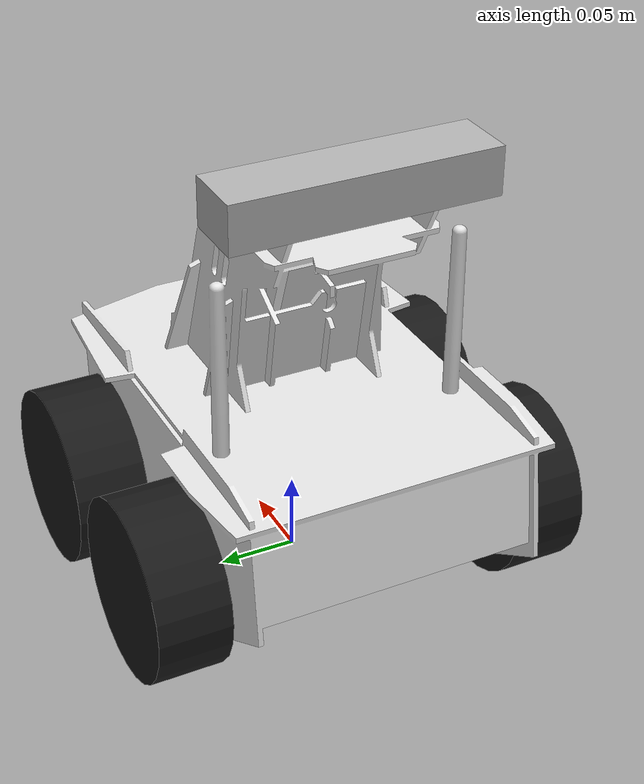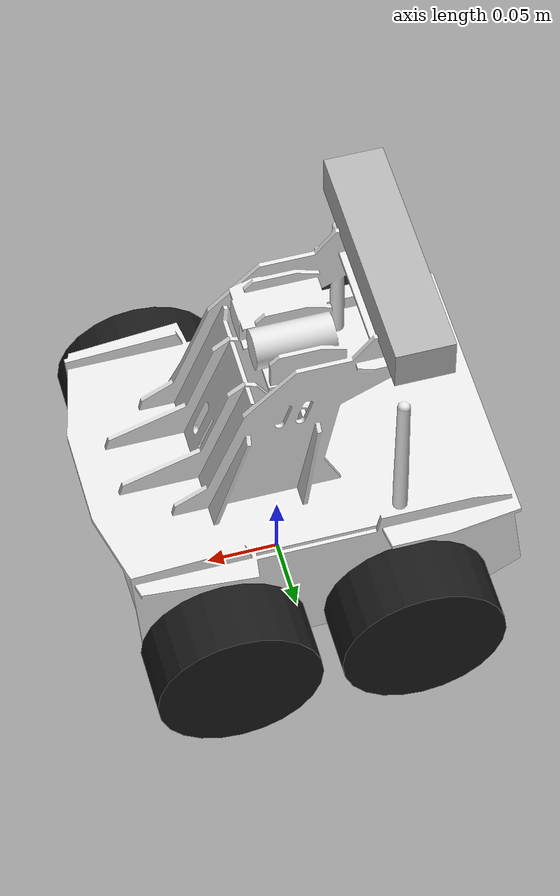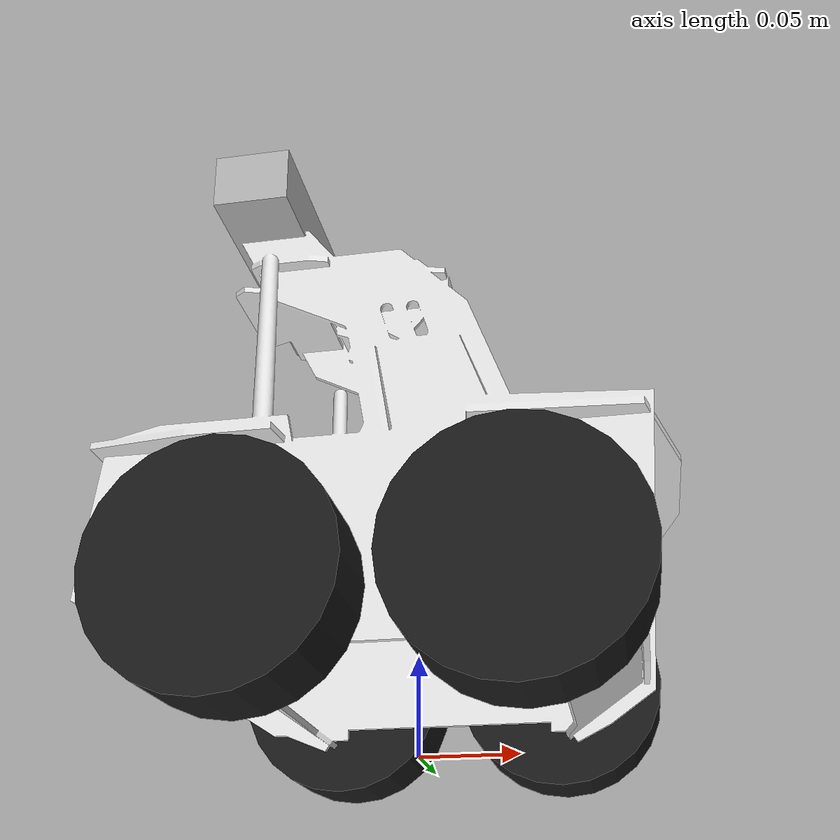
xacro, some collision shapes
<?xml version='1.0'?>

<robot name="oculusprime" xmlns:xacro="http://ros.org/wiki/xacro">
<xacro:property name="M_PI" value="3.1415926535897931" />

	<link name="base_link">
		<inertial>
			<origin xyz="0 0 0.06" rpy="0 0 0" />
			<mass value="4.0"/>
			<inertia ixx="0.0227"
				iyy="0.0359"
				izz="0.0371"
				ixy="0"
				ixz="0"
				iyz="0"	/>
		</inertial>

		<collision>
			<origin xyz="-0.0064 0 0.1517" rpy="0 0 0" />
			<geometry>
				<box size=".2818 .19 .2595"/>
			</geometry>
		</collision>

		<visual>
			<origin xyz="0.0127 0 .0808" rpy="0 0 ${M_PI/2}" />
			<geometry>
				<mesh filename="package://oculusprime/description/meshes/chassis.dae" />
			</geometry>
		</visual>

	</link>

	<material name="black">
		<color rgba="0.1 0.1 0.1 1.0"/>
	</material>

	<!-- wheels -->
	<joint type="continuous" name="front_right_wheel_joint">
		<origin xyz="0.0635 -0.1186 0.057" rpy="0 ${M_PI/2} ${M_PI/2}"/>
		<parent link="base_link"/>
		<child link="front_right_wheel_link"/>
		<axis xyz="0 0 1"/>
	</joint>

	<link name="front_right_wheel_link">
		<collision>
			<origin xyz="0 0 0" rpy="0 0 0"/>
			<geometry>
				<cylinder radius="0.057" length="0.046" />
			</geometry>
		</collision>

		<visual>
			<origin xyz="0 0 0" rpy="0 0 0"/>
			<geometry>
				<cylinder radius="0.057" length="0.046" />
			</geometry>
			<material name="black"/>
		</visual>

		<inertial>
			<mass value="0.05" />
			<origin xyz="0 0 0" />
			<inertia ixx="0.001" ixy="0.0" ixz="0.0"
			iyy="0.001" iyz="0.0"
			izz="0.001" />
		</inertial>
	</link>

	<joint type="continuous" name="front_left_wheel_joint">
		<origin xyz="0.0635 0.1186 0.057" rpy="0 ${M_PI/2} ${M_PI/2}"/>
		<child link="front_left_wheel_link"/>
		<parent link="base_link"/>
		<axis xyz="0 0 1"/>
	</joint>

	<link name="front_left_wheel_link">
		<collision>
			<origin xyz="0 0 0" rpy="0 0 0"/>
			<geometry>
				<cylinder radius="0.057" length="0.046" />
			</geometry>
		</collision>

		<visual>
			<origin xyz="0 0 0" rpy="0 0 0"/>
			<geometry>
				<cylinder radius="0.057" length="0.046" />
			</geometry>
			<material name="black"/>
		</visual>

		<inertial>
			<mass value="0.05" />
			<origin xyz="0 0 0" />
			<inertia ixx="0.001" ixy="0.0" ixz="0.0"
			iyy="0.001" iyz="0.0"
			izz="0.001" />
		</inertial>
	</link>

	<joint type="continuous" name="rear_right_wheel_joint">
		<origin xyz="-0.0635 -0.1186 0.057" rpy="0 ${M_PI/2} ${M_PI/2}"/>
		<child link="rear_right_wheel_link"/>
		<parent link="base_link"/>
		<axis xyz="0 0 1"/>
	</joint>

	<link name="rear_right_wheel_link">
		<collision>
			<origin xyz="0 0 0" rpy="0 0 0"/>
			<geometry>
				<cylinder radius="0.057" length="0.046" />
			</geometry>
		</collision>

		<visual>
			<origin xyz="0 0 0" rpy="0 0 0"/>
			<geometry>
				<cylinder radius="0.057" length="0.046" />
			</geometry>
			<material name="black"/>
		</visual>

		<inertial>
			<mass value="0.05" />
			<origin xyz="0 0 0" />
			<inertia ixx="0.001" ixy="0.0" ixz="0.0"
			iyy="0.001" iyz="0.0"
			izz="0.001" />
		</inertial>
	</link>

	<joint type="continuous" name="rear_left_wheel_joint">
		<origin xyz="-0.0635 0.1186 0.057" rpy="0 ${M_PI/2} ${M_PI/2}"/>
		<child link="rear_left_wheel_link"/>
		<parent link="base_link"/>
		<axis xyz="0 0 1"/>
	</joint>

	<link name="rear_left_wheel_link">
		<collision>
			<origin xyz="0 0 0" rpy="0 0 0"/>
			<geometry>
				<cylinder radius="0.057" length="0.046" />
			</geometry>
		</collision>

		<visual>
			<origin xyz="0 0 0" rpy="0 0 0"/>
			<geometry>
				<cylinder radius="0.057" length="0.046" />
			</geometry>
			<material name="black"/>
		</visual>

		<inertial>
			<mass value="0.05" />
			<origin xyz="0 0 0" />
			<inertia ixx="0.001" ixy="0.0" ixz="0.0"
			iyy="0.001" iyz="0.0"
			izz="0.001" />
		</inertial>
	</link>

	<!-- astra -->
	<xacro:include filename="$(find oculusprime)/description/astra.urdf.xacro"/>
	<sensor_astra parent="base_link"/>

	<!-- gazebo specific stuff -->
	<gazebo reference="front_right_wheel_link">
		<mu1>1.0</mu1>
		<mu2>1.0</mu2>
		<kp>1000000.0</kp>
		<kd>100.0</kd>
		<minDepth>0.001</minDepth>
		<maxVel>1.0</maxVel>
		<material>Gazebo/DarkGrey</material>
	</gazebo>

	<gazebo reference="front_left_wheel_link">
		<mu1>1.0</mu1>
		<mu2>1.0</mu2>
		<kp>1000000.0</kp>
		<kd>100.0</kd>
		<minDepth>0.001</minDepth>
		<maxVel>1.0</maxVel>
		<material>Gazebo/DarkGrey</material>
	</gazebo>

	<gazebo reference="rear_right_wheel_link">
		<mu1>1.0</mu1>
		<mu2>1.0</mu2>
		<kp>1000000.0</kp>
		<kd>100.0</kd>
		<minDepth>0.001</minDepth>
		<maxVel>1.0</maxVel>
		<material>Gazebo/DarkGrey</material>
	</gazebo>

	<gazebo reference="rear_left_wheel_link">
		<mu1>1.0</mu1>
		<mu2>1.0</mu2>
		<kp>1000000.0</kp>
		<kd>100.0</kd>
		<minDepth>0.001</minDepth>
		<maxVel>1.0</maxVel>
		<material>Gazebo/DarkGrey</material>
	</gazebo>

	<joint name="gyro_joint" type="fixed">
      <axis xyz="0 1 0"/>
      <origin xyz="0 0 0" rpy="0 0 0"/>
      <parent link="base_link"/>
      <child link="gyro_link"/>
    </joint>
    <link name="gyro_link">
      <inertial>
        <mass value="0.001"/>
        <origin xyz="0 0 0" rpy="0 0 0"/>
        <inertia ixx="0.0001" ixy="0" ixz="0"
                 iyy="0.000001" iyz="0"
                 izz="0.0001"/>
      </inertial>
    </link>

	<gazebo reference="gyro_link">
	   <sensor type="imu" name="imu">
        <always_on>true</always_on>
        <update_rate>50</update_rate>
        <visualize>false</visualize>
        <imu>
          <noise>
            <type>gaussian</type>
	          <rate>
	            <mean>0.0</mean>
	            <!-- 0.25 x 0.25 (deg/s): -->

	             <stddev>${0.0000*0.0000}</stddev>
	            <bias_mean>0.0</bias_mean>
	            <bias_stddev>0.0</bias_stddev>
	          </rate>
		        <accel> <!-- not used in the plugin and real robot, hence using tutorial values -->
			        <mean>0.0</mean>
					<stddev>0</stddev>
			        <bias_mean>0.1</bias_mean>
			        <bias_stddev>0.000</bias_stddev>

		        </accel>
          </noise>
	      </imu>
      </sensor>
	</gazebo>

	<gazebo>
		<plugin name="skidsteer_controller" filename="libgazebo_ros_skid_steer_drive.so">

			<commandTopic>cmd_vel</commandTopic>
			<broadcastTF>true</broadcastTF>
			<odometryTopic>odom</odometryTopic>
			<odometryFrame>odom</odometryFrame>

			<leftFrontJoint>front_left_wheel_joint</leftFrontJoint>
			<rightFrontJoint>front_right_wheel_joint</rightFrontJoint>
			<leftRearJoint>rear_left_wheel_joint</leftRearJoint>
			<rightRearJoint>rear_right_wheel_joint</rightRearJoint>

			<wheelSeparation>0.2372</wheelSeparation>
			<wheelDiameter>0.114</wheelDiameter>

			<torque>1.0</torque>
			<robotBaseFrame>base_link</robotBaseFrame>
			<updateRate>30</updateRate>

		</plugin>
	</gazebo>

	<gazebo>
		<plugin name="gazebo_joint_state_publisher" filename="libgazebo_ros_joint_state_publisher.so">
		</plugin>
	</gazebo>

</robot>

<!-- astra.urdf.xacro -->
<robot name="sensor_astra" xmlns:xacro="http://ros.org/wiki/xacro">

	<!-- Xacro properties -->
	<xacro:property name="astra_cam_py" value="0.0125"/>
	<xacro:property name="astra_depth_rel_rgb_py" value="0.0250" />
	<xacro:property name="astra_cam_rel_rgb_py"   value="-0.0125" />
	<xacro:property name="astra_dae_display_scale"   value="1" />

	<xacro:property name="cam_px" value="-0.0545" />
	<xacro:property name="cam_pz" value="0.2930" />
	<xacro:property name="cam_or" value="0" />
	<xacro:property name="cam_op" value="0" />
	<xacro:property name="cam_oy" value="0" />
	<xacro:property name="M_PI" value="3.1415926535897931" />

<!--
base/parent link: camera_rgb_frame
camera visual/collision: y + astra_cam_rel_rgb_py (-0.0125)

-->

  <!-- Parameterised in part by the values in turtlebot_properties.urdf.xacro -->
  <xacro:macro name="sensor_astra" params="parent">
    <joint name="camera_rgb_joint" type="fixed">
      <origin xyz="${cam_px} ${astra_cam_py} ${cam_pz}"
              rpy="0 0 0"/>
      <parent link="${parent}"/>
      <child link="camera_rgb_frame" />
    </joint>
    <link name="camera_rgb_frame"/>

    <joint name="camera_rgb_optical_joint" type="fixed">
      <origin xyz="0 0 0" rpy="${-M_PI/2} 0 ${-M_PI/2}" />
      <parent link="camera_rgb_frame" />
      <child link="camera_rgb_optical_frame" />
    </joint>
    <link name="camera_rgb_optical_frame"/>

    <joint name="camera_joint" type="fixed">
      <origin xyz="0 ${astra_cam_rel_rgb_py} 0"
              rpy="0 0 0"/>
      <parent link="camera_rgb_frame"/>
      <child link="camera_link"/>
    </joint>
    <link name="camera_link">
      <visual>
        <origin xyz="-.030 0 -.008" rpy="0 0 0"/>
        <geometry>
          <mesh filename="package://oculusprime/description/meshes/orbbec_astra_camera.dae"
			scale="${astra_dae_display_scale} ${astra_dae_display_scale} ${astra_dae_display_scale}"/>
        </geometry>
      </visual>
      <collision>
        <origin xyz="-0.02 0.0 0.0" rpy="0 0 0" />
        <geometry>
        <box size="0.0400 0.1650 0.0300"/>
      </geometry>
      </collision>
      <inertial>
        <mass value="0.564" />
        <origin xyz="0 0 0" />
        <inertia ixx="0.003881243" ixy="0.0" ixz="0.0"
                 iyy="0.000498940" iyz="0.0"
                 izz="0.003879257" />
      </inertial>
    </link>

    <joint name="camera_depth_joint" type="fixed">
      <origin xyz="0 ${astra_depth_rel_rgb_py} 0" rpy="0 0 0" />
      <parent link="camera_rgb_frame" />
      <child link="camera_depth_frame" />
    </joint>
    <link name="camera_depth_frame"/>

    <joint name="camera_depth_optical_joint" type="fixed">
      <origin xyz="0 0 0" rpy="${-M_PI/2} 0 ${-M_PI/2}" />
      <parent link="camera_depth_frame" />
      <child link="camera_depth_optical_frame" />
    </joint>
    <link name="camera_depth_optical_frame"/>

    <gazebo reference="camera_link">
      <sensor type="depth" name="camera">
        <always_on>true</always_on>
        <update_rate>20.0</update_rate>
        <camera>
          <horizontal_fov>${60.0*M_PI/180.0}</horizontal_fov>
          <image>
            <format>B8G8R8</format>
            <width>640</width>
            <height>480</height>
          </image>
          <clip>
            <near>0.05</near>
            <far>8.0</far>
          </clip>
        </camera>
        <plugin name="kinect_camera_controller" filename="libgazebo_ros_openni_kinect.so">
          <cameraName>camera</cameraName>
          <alwaysOn>true</alwaysOn>
          <updateRate>10</updateRate>
          <imageTopicName>rgb/image_raw</imageTopicName>
          <depthImageTopicName>depth/image_raw</depthImageTopicName>
          <pointCloudTopicName>depth/points</pointCloudTopicName>
          <cameraInfoTopicName>rgb/camera_info</cameraInfoTopicName>
          <depthImageCameraInfoTopicName>depth/camera_info</depthImageCameraInfoTopicName>
          <frameName>camera_depth_optical_frame</frameName>
          <baseline>0.1</baseline>
          <distortion_k1>0.0</distortion_k1>
          <distortion_k2>0.0</distortion_k2>
          <distortion_k3>0.0</distortion_k3>
          <distortion_t1>0.0</distortion_t1>
          <distortion_t2>0.0</distortion_t2>
          <pointCloudCutoff>0.4</pointCloudCutoff>
        </plugin>
      </sensor>
    </gazebo>

  </xacro:macro>
</robot>
